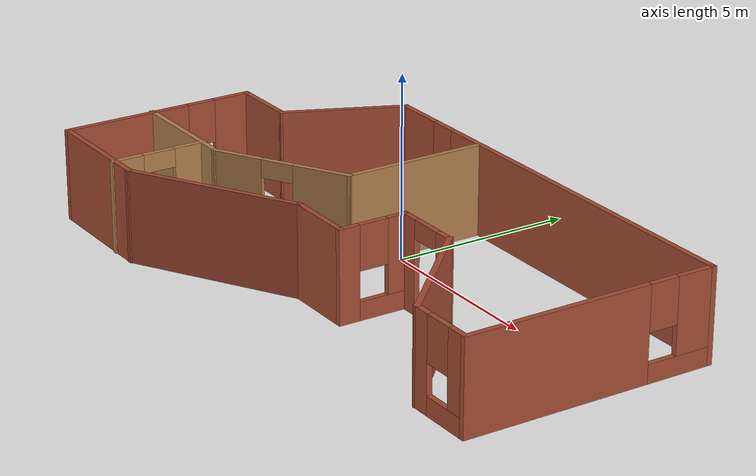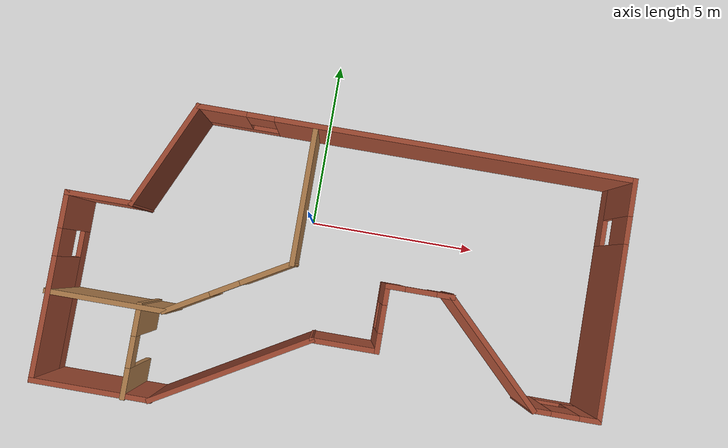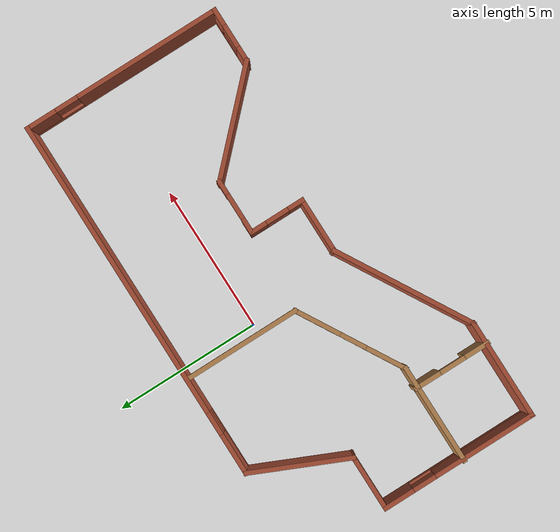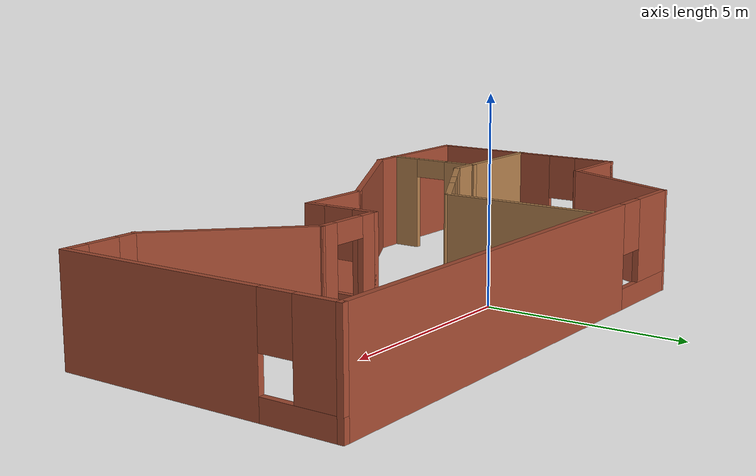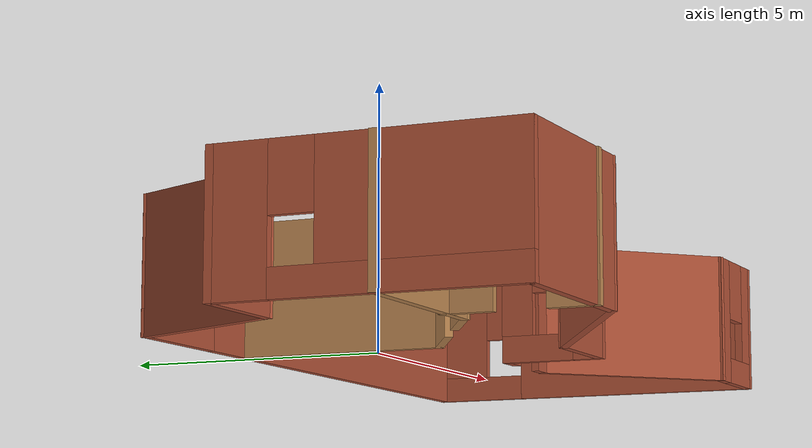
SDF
<?xml version='1.0'?>
<sdf version='1.6'>
  <model name='test_layout'>
    <pose frame=''>0.934964 -1.59471 0 0 -0 0</pose>
    <link name='Wall_0'>
      <pose frame=''>-7.88496 -1.52029 0 0 -0 -1.5708</pose>
      <visual name='Wall_0_Visual_0'>
        <pose frame=''>-2.1977 0 1.25 0 -0 0</pose>
        <geometry>
          <box>
            <size>1.1046 0.15 2.5</size>
          </box>
        </geometry>
        <material>
          <script>
            <uri>file://media/materials/scripts/gazebo.material</uri>
            <name>Gazebo/Bricks</name>
          </script>
          <ambient>1 1 1 1</ambient>
        </material>
        <meta>
          <layer>0</layer>
        </meta>
      </visual>
      <collision name='Wall_0_Collision_0'>
        <geometry>
          <box>
            <size>1.1046 0.15 2.5</size>
          </box>
        </geometry>
        <pose frame=''>-2.1977 0 1.25 0 -0 0</pose>
      </collision>
      <visual name='Wall_0_Visual_1'>
        <pose frame=''>0.552301 0 0.25 0 -0 0</pose>
        <geometry>
          <box>
            <size>4.3954 0.15 0.5</size>
          </box>
        </geometry>
        <material>
          <script>
            <uri>file://media/materials/scripts/gazebo.material</uri>
            <name>Gazebo/Bricks</name>
          </script>
          <ambient>1 1 1 1</ambient>
        </material>
        <meta>
          <layer>0</layer>
        </meta>
      </visual>
      <collision name='Wall_0_Collision_1'>
        <geometry>
          <box>
            <size>4.3954 0.15 0.5</size>
          </box>
        </geometry>
        <pose frame=''>0.552301 0 0.25 0 -0 0</pose>
      </collision>
      <visual name='Wall_0_Visual_2'>
        <pose frame=''>0.952301 0 1.5 0 -0 0</pose>
        <geometry>
          <box>
            <size>3.5954 0.15 2</size>
          </box>
        </geometry>
        <material>
          <script>
            <uri>file://media/materials/scripts/gazebo.material</uri>
            <name>Gazebo/Bricks</name>
          </script>
          <ambient>1 1 1 1</ambient>
        </material>
        <meta>
          <layer>0</layer>
        </meta>
      </visual>
      <collision name='Wall_0_Collision_2'>
        <geometry>
          <box>
            <size>3.5954 0.15 2</size>
          </box>
        </geometry>
        <pose frame=''>0.952301 0 1.5 0 -0 0</pose>
      </collision>
      <visual name='Wall_0_Visual_3'>
        <pose frame=''>-1.2454 0 1.9 0 -0 0</pose>
        <geometry>
          <box>
            <size>0.8 0.15 1.2</size>
          </box>
        </geometry>
        <material>
          <script>
            <uri>file://media/materials/scripts/gazebo.material</uri>
            <name>Gazebo/Bricks</name>
          </script>
          <ambient>1 1 1 1</ambient>
        </material>
        <meta>
          <layer>0</layer>
        </meta>
      </visual>
      <collision name='Wall_0_Collision_3'>
        <geometry>
          <box>
            <size>0.8 0.15 1.2</size>
          </box>
        </geometry>
        <pose frame=''>-1.2454 0 1.9 0 -0 0</pose>
      </collision>
    </link>
    <link name='Wall_1'>
      <collision name='Wall_1_Collision'>
        <geometry>
          <box>
            <size>3.5 0.15 2.5</size>
          </box>
        </geometry>
        <pose frame=''>0 0 1.25 0 -0 0</pose>
      </collision>
      <visual name='Wall_1_Visual'>
        <pose frame=''>0 0 1.25 0 -0 0</pose>
        <geometry>
          <box>
            <size>3.5 0.15 2.5</size>
          </box>
        </geometry>
        <material>
          <script>
            <uri>file://media/materials/scripts/gazebo.material</uri>
            <name>Gazebo/Bricks</name>
          </script>
          <ambient>1 1 1 1</ambient>
        </material>
        <meta>
          <layer>0</layer>
        </meta>
      </visual>
      <pose frame=''>-6.20996 -4.19529 0 0 -0 0</pose>
    </link>
    <link name='Wall_12'>
      <collision name='Wall_12_Collision'>
        <geometry>
          <box>
            <size>2 0.15 2.5</size>
          </box>
        </geometry>
        <pose frame=''>0 0 1.25 0 -0 0</pose>
      </collision>
      <visual name='Wall_12_Visual'>
        <pose frame=''>0 0 1.25 0 -0 0</pose>
        <geometry>
          <box>
            <size>2 0.15 2.5</size>
          </box>
        </geometry>
        <material>
          <script>
            <uri>file://media/materials/scripts/gazebo.material</uri>
            <name>Gazebo/Bricks</name>
          </script>
          <ambient>1 1 1 1</ambient>
        </material>
        <meta>
          <layer>0</layer>
        </meta>
      </visual>
      <pose frame=''>-6.95996 1.15471 0 0 -0 0</pose>
    </link>
    <link name='Wall_13'>
      <collision name='Wall_13_Collision'>
        <geometry>
          <box>
            <size>3.49703 0.15 2.5</size>
          </box>
        </geometry>
        <pose frame=''>0 0 1.25 0 -0 0</pose>
      </collision>
      <visual name='Wall_13_Visual'>
        <pose frame=''>0 0 1.25 0 -0 0</pose>
        <geometry>
          <box>
            <size>3.49703 0.15 2.5</size>
          </box>
        </geometry>
        <material>
          <script>
            <uri>file://media/materials/scripts/gazebo.material</uri>
            <name>Gazebo/Bricks</name>
          </script>
          <ambient>1 1 1 1</ambient>
        </material>
        <meta>
          <layer>0</layer>
        </meta>
      </visual>
      <pose frame=''>-5.34867 2.68103 0 0 -0 1.14824</pose>
    </link>
    <link name='Wall_15'>
      <collision name='Wall_15_Collision'>
        <geometry>
          <box>
            <size>3.5 0.15 2.5</size>
          </box>
        </geometry>
        <pose frame=''>0 0 1.25 0 -0 0</pose>
      </collision>
      <visual name='Wall_15_Visual'>
        <pose frame=''>0 0 1.25 0 -0 0</pose>
        <geometry>
          <box>
            <size>3.5 0.15 2.5</size>
          </box>
        </geometry>
        <material>
          <script>
            <uri>file://media/materials/scripts/gazebo.material</uri>
            <name>Gazebo/Wood</name>
          </script>
          <ambient>1 1 1 1</ambient>
        </material>
        <meta>
          <layer>0</layer>
        </meta>
      </visual>
      <pose frame=''>-6.26262 -1.68471 0 0 -0 0</pose>
    </link>
    <link name='Wall_16'>
      <pose frame=''>-2.92052 -0.722207 0 0 -0 0.523599</pose>
      <visual name='Wall_16_Visual_0'>
        <pose frame=''>-1.27317 0 1.25 0 -0 0</pose>
        <geometry>
          <box>
            <size>1.45367 0.15 2.5</size>
          </box>
        </geometry>
        <material>
          <script>
            <uri>file://media/materials/scripts/gazebo.material</uri>
            <name>Gazebo/Wood</name>
          </script>
          <ambient>1 1 1 1</ambient>
        </material>
        <meta>
          <layer>0</layer>
        </meta>
      </visual>
      <collision name='Wall_16_Collision_0'>
        <geometry>
          <box>
            <size>1.45367 0.15 2.5</size>
          </box>
        </geometry>
        <pose frame=''>-1.27317 0 1.25 0 -0 0</pose>
      </collision>
      <visual name='Wall_16_Visual_1'>
        <pose frame=''>1.17684 0 1.25 0 -0 0</pose>
        <geometry>
          <box>
            <size>1.64633 0.15 2.5</size>
          </box>
        </geometry>
        <material>
          <script>
            <uri>file://media/materials/scripts/gazebo.material</uri>
            <name>Gazebo/Wood</name>
          </script>
          <ambient>1 1 1 1</ambient>
        </material>
        <meta>
          <layer>0</layer>
        </meta>
      </visual>
      <collision name='Wall_16_Collision_1'>
        <geometry>
          <box>
            <size>1.64633 0.15 2.5</size>
          </box>
        </geometry>
        <pose frame=''>1.17684 0 1.25 0 -0 0</pose>
      </collision>
      <visual name='Wall_16_Visual_2'>
        <pose frame=''>-0.09633 0 2.25 0 -0 0</pose>
        <geometry>
          <box>
            <size>0.9 0.15 0.5</size>
          </box>
        </geometry>
        <material>
          <script>
            <uri>file://media/materials/scripts/gazebo.material</uri>
            <name>Gazebo/Wood</name>
          </script>
          <ambient>1 1 1 1</ambient>
        </material>
        <meta>
          <layer>0</layer>
        </meta>
      </visual>
      <collision name='Wall_16_Collision_2'>
        <geometry>
          <box>
            <size>0.9 0.15 0.5</size>
          </box>
        </geometry>
        <pose frame=''>-0.09633 0 2.25 0 -0 0</pose>
      </collision>
    </link>
    <link name='Wall_17'>
      <collision name='Wall_17_Collision'>
        <geometry>
          <box>
            <size>4 0.15 2.5</size>
          </box>
        </geometry>
        <pose frame=''>0 0 1.25 0 -0 0</pose>
      </collision>
      <visual name='Wall_17_Visual'>
        <pose frame=''>0 0 1.25 0 -0 0</pose>
        <geometry>
          <box>
            <size>4 0.15 2.5</size>
          </box>
        </geometry>
        <material>
          <script>
            <uri>file://media/materials/scripts/gazebo.material</uri>
            <name>Gazebo/Wood</name>
          </script>
          <ambient>1 1 1 1</ambient>
        </material>
        <meta>
          <layer>0</layer>
        </meta>
      </visual>
      <pose frame=''>-1.25342 2.16529 0 0 -0 1.5708</pose>
    </link>
    <link name='Wall_2'>
      <collision name='Wall_2_Collision'>
        <geometry>
          <box>
            <size>5 0.15 2.5</size>
          </box>
        </geometry>
        <pose frame=''>0 0 1.25 0 -0 0</pose>
      </collision>
      <visual name='Wall_2_Visual'>
        <pose frame=''>0 0 1.25 0 -0 0</pose>
        <geometry>
          <box>
            <size>5 0.15 2.5</size>
          </box>
        </geometry>
        <material>
          <script>
            <uri>file://media/materials/scripts/gazebo.material</uri>
            <name>Gazebo/Bricks</name>
          </script>
          <ambient>1 1 1 1</ambient>
        </material>
        <meta>
          <layer>0</layer>
        </meta>
      </visual>
      <pose frame=''>-2.43485 -2.98279 0 0 -0 0.523599</pose>
    </link>
    <link name='Wall_20'>
      <pose frame=''>-5.2776 -2.93151 0 0 -0 -1.5708</pose>
      <visual name='Wall_20_Visual_0'>
        <pose frame=''>-0.897495 0 1.25 0 -0 0</pose>
        <geometry>
          <box>
            <size>0.95501 0.15 2.5</size>
          </box>
        </geometry>
        <material>
          <script>
            <uri>file://media/materials/scripts/gazebo.material</uri>
            <name>Gazebo/Wood</name>
          </script>
          <ambient>1 1 1 1</ambient>
        </material>
        <meta>
          <layer>0</layer>
        </meta>
      </visual>
      <collision name='Wall_20_Collision_0'>
        <geometry>
          <box>
            <size>0.95501 0.15 2.5</size>
          </box>
        </geometry>
        <pose frame=''>-0.897495 0 1.25 0 -0 0</pose>
      </collision>
      <visual name='Wall_20_Visual_1'>
        <pose frame=''>0.927505 0 1.25 0 -0 0</pose>
        <geometry>
          <box>
            <size>0.89499 0.15 2.5</size>
          </box>
        </geometry>
        <material>
          <script>
            <uri>file://media/materials/scripts/gazebo.material</uri>
            <name>Gazebo/Wood</name>
          </script>
          <ambient>1 1 1 1</ambient>
        </material>
        <meta>
          <layer>0</layer>
        </meta>
      </visual>
      <collision name='Wall_20_Collision_1'>
        <geometry>
          <box>
            <size>0.89499 0.15 2.5</size>
          </box>
        </geometry>
        <pose frame=''>0.927505 0 1.25 0 -0 0</pose>
      </collision>
      <visual name='Wall_20_Visual_2'>
        <pose frame=''>0.03001 0 2.25 0 -0 0</pose>
        <geometry>
          <box>
            <size>0.9 0.15 0.5</size>
          </box>
        </geometry>
        <material>
          <script>
            <uri>file://media/materials/scripts/gazebo.material</uri>
            <name>Gazebo/Wood</name>
          </script>
          <ambient>1 1 1 1</ambient>
        </material>
        <meta>
          <layer>0</layer>
        </meta>
      </visual>
      <collision name='Wall_20_Collision_2'>
        <geometry>
          <box>
            <size>0.9 0.15 0.5</size>
          </box>
        </geometry>
        <pose frame=''>0.03001 0 2.25 0 -0 0</pose>
      </collision>
    </link>
    <link name='Wall_3'>
      <collision name='Wall_3_Collision'>
        <geometry>
          <box>
            <size>2 0.15 2.5</size>
          </box>
        </geometry>
        <pose frame=''>0 0 1.25 0 -0 0</pose>
      </collision>
      <visual name='Wall_3_Visual'>
        <pose frame=''>0 0 1.25 0 -0 0</pose>
        <geometry>
          <box>
            <size>2 0.15 2.5</size>
          </box>
        </geometry>
        <material>
          <script>
            <uri>file://media/materials/scripts/gazebo.material</uri>
            <name>Gazebo/Bricks</name>
          </script>
          <ambient>1 1 1 1</ambient>
        </material>
        <meta>
          <layer>0</layer>
        </meta>
      </visual>
      <pose frame=''>0.590259 -1.77029 0 0 -0 0</pose>
    </link>
    <link name='Wall_4'>
      <pose frame=''>1.51526 -0.845293 0 0 -0 1.5708</pose>
      <visual name='Wall_4_Visual_0'>
        <pose frame=''>-0.707403 0 1.25 0 -0 0</pose>
        <geometry>
          <box>
            <size>0.585193 0.15 2.5</size>
          </box>
        </geometry>
        <material>
          <script>
            <uri>file://media/materials/scripts/gazebo.material</uri>
            <name>Gazebo/Bricks</name>
          </script>
          <ambient>1 1 1 1</ambient>
        </material>
        <meta>
          <layer>0</layer>
        </meta>
      </visual>
      <collision name='Wall_4_Collision_0'>
        <geometry>
          <box>
            <size>0.585193 0.15 2.5</size>
          </box>
        </geometry>
        <pose frame=''>-0.707403 0 1.25 0 -0 0</pose>
      </collision>
      <visual name='Wall_4_Visual_1'>
        <pose frame=''>0.292597 0 0.25 0 -0 0</pose>
        <geometry>
          <box>
            <size>1.41481 0.15 0.5</size>
          </box>
        </geometry>
        <material>
          <script>
            <uri>file://media/materials/scripts/gazebo.material</uri>
            <name>Gazebo/Bricks</name>
          </script>
          <ambient>1 1 1 1</ambient>
        </material>
        <meta>
          <layer>0</layer>
        </meta>
      </visual>
      <collision name='Wall_4_Collision_1'>
        <geometry>
          <box>
            <size>1.41481 0.15 0.5</size>
          </box>
        </geometry>
        <pose frame=''>0.292597 0 0.25 0 -0 0</pose>
      </collision>
      <visual name='Wall_4_Visual_2'>
        <pose frame=''>0.692597 0 1.5 0 -0 0</pose>
        <geometry>
          <box>
            <size>0.614807 0.15 2</size>
          </box>
        </geometry>
        <material>
          <script>
            <uri>file://media/materials/scripts/gazebo.material</uri>
            <name>Gazebo/Bricks</name>
          </script>
          <ambient>1 1 1 1</ambient>
        </material>
        <meta>
          <layer>0</layer>
        </meta>
      </visual>
      <collision name='Wall_4_Collision_2'>
        <geometry>
          <box>
            <size>0.614807 0.15 2</size>
          </box>
        </geometry>
        <pose frame=''>0.692597 0 1.5 0 -0 0</pose>
      </collision>
      <visual name='Wall_4_Visual_3'>
        <pose frame=''>-0.014807 0 1.9 0 -0 0</pose>
        <geometry>
          <box>
            <size>0.8 0.15 1.2</size>
          </box>
        </geometry>
        <material>
          <script>
            <uri>file://media/materials/scripts/gazebo.material</uri>
            <name>Gazebo/Bricks</name>
          </script>
          <ambient>1 1 1 1</ambient>
        </material>
        <meta>
          <layer>0</layer>
        </meta>
      </visual>
      <collision name='Wall_4_Collision_3'>
        <geometry>
          <box>
            <size>0.8 0.15 1.2</size>
          </box>
        </geometry>
        <pose frame=''>-0.014807 0 1.9 0 -0 0</pose>
      </collision>
    </link>
    <link name='Wall_5'>
      <pose frame=''>2.44026 0.079707 0 0 -0 0</pose>
      <visual name='Wall_5_Visual_0'>
        <pose frame=''>-0.713601 0 1.25 0 -0 0</pose>
        <geometry>
          <box>
            <size>0.572797 0.15 2.5</size>
          </box>
        </geometry>
        <material>
          <script>
            <uri>file://media/materials/scripts/gazebo.material</uri>
            <name>Gazebo/Bricks</name>
          </script>
          <ambient>1 1 1 1</ambient>
        </material>
        <meta>
          <layer>0</layer>
        </meta>
      </visual>
      <collision name='Wall_5_Collision_0'>
        <geometry>
          <box>
            <size>0.572797 0.15 2.5</size>
          </box>
        </geometry>
        <pose frame=''>-0.713601 0 1.25 0 -0 0</pose>
      </collision>
      <visual name='Wall_5_Visual_1'>
        <pose frame=''>0.736399 0 1.25 0 -0 0</pose>
        <geometry>
          <box>
            <size>0.527203 0.15 2.5</size>
          </box>
        </geometry>
        <material>
          <script>
            <uri>file://media/materials/scripts/gazebo.material</uri>
            <name>Gazebo/Bricks</name>
          </script>
          <ambient>1 1 1 1</ambient>
        </material>
        <meta>
          <layer>0</layer>
        </meta>
      </visual>
      <collision name='Wall_5_Collision_1'>
        <geometry>
          <box>
            <size>0.527203 0.15 2.5</size>
          </box>
        </geometry>
        <pose frame=''>0.736399 0 1.25 0 -0 0</pose>
      </collision>
      <visual name='Wall_5_Visual_2'>
        <pose frame=''>0.022797 0 2.25 0 -0 0</pose>
        <geometry>
          <box>
            <size>0.9 0.15 0.5</size>
          </box>
        </geometry>
        <material>
          <script>
            <uri>file://media/materials/scripts/gazebo.material</uri>
            <name>Gazebo/Bricks</name>
          </script>
          <ambient>1 1 1 1</ambient>
        </material>
        <meta>
          <layer>0</layer>
        </meta>
      </visual>
      <collision name='Wall_5_Collision_2'>
        <geometry>
          <box>
            <size>0.9 0.15 0.5</size>
          </box>
        </geometry>
        <pose frame=''>0.022797 0 2.25 0 -0 0</pose>
      </collision>
    </link>
    <link name='Wall_6'>
      <collision name='Wall_6_Collision'>
        <geometry>
          <box>
            <size>4 0.15 2.5</size>
          </box>
        </geometry>
        <pose frame=''>0 0 1.25 0 -0 0</pose>
      </collision>
      <visual name='Wall_6_Visual'>
        <pose frame=''>0 0 1.25 0 -0 0</pose>
        <geometry>
          <box>
            <size>4 0.15 2.5</size>
          </box>
        </geometry>
        <material>
          <script>
            <uri>file://media/materials/scripts/gazebo.material</uri>
            <name>Gazebo/Bricks</name>
          </script>
          <ambient>1 1 1 1</ambient>
        </material>
        <meta>
          <layer>0</layer>
        </meta>
      </visual>
      <pose frame=''>4.72644 -1.28147 0 0 -0 -0.785398</pose>
    </link>
    <link name='Wall_7'>
      <pose frame=''>7.01262 -2.64265 0 0 -0 0</pose>
      <visual name='Wall_7_Visual_0'>
        <pose frame=''>-0.713765 0 1.25 0 -0 0</pose>
        <geometry>
          <box>
            <size>0.57247 0.15 2.5</size>
          </box>
        </geometry>
        <material>
          <script>
            <uri>file://media/materials/scripts/gazebo.material</uri>
            <name>Gazebo/Bricks</name>
          </script>
          <ambient>1 1 1 1</ambient>
        </material>
        <meta>
          <layer>0</layer>
        </meta>
      </visual>
      <collision name='Wall_7_Collision_0'>
        <geometry>
          <box>
            <size>0.57247 0.15 2.5</size>
          </box>
        </geometry>
        <pose frame=''>-0.713765 0 1.25 0 -0 0</pose>
      </collision>
      <visual name='Wall_7_Visual_1'>
        <pose frame=''>0.286235 0 0.25 0 -0 0</pose>
        <geometry>
          <box>
            <size>1.42753 0.15 0.5</size>
          </box>
        </geometry>
        <material>
          <script>
            <uri>file://media/materials/scripts/gazebo.material</uri>
            <name>Gazebo/Bricks</name>
          </script>
          <ambient>1 1 1 1</ambient>
        </material>
        <meta>
          <layer>0</layer>
        </meta>
      </visual>
      <collision name='Wall_7_Collision_1'>
        <geometry>
          <box>
            <size>1.42753 0.15 0.5</size>
          </box>
        </geometry>
        <pose frame=''>0.286235 0 0.25 0 -0 0</pose>
      </collision>
      <visual name='Wall_7_Visual_2'>
        <pose frame=''>0.686235 0 1.5 0 -0 0</pose>
        <geometry>
          <box>
            <size>0.62753 0.15 2</size>
          </box>
        </geometry>
        <material>
          <script>
            <uri>file://media/materials/scripts/gazebo.material</uri>
            <name>Gazebo/Bricks</name>
          </script>
          <ambient>1 1 1 1</ambient>
        </material>
        <meta>
          <layer>0</layer>
        </meta>
      </visual>
      <collision name='Wall_7_Collision_2'>
        <geometry>
          <box>
            <size>0.62753 0.15 2</size>
          </box>
        </geometry>
        <pose frame=''>0.686235 0 1.5 0 -0 0</pose>
      </collision>
      <visual name='Wall_7_Visual_3'>
        <pose frame=''>-0.02753 0 1.9 0 -0 0</pose>
        <geometry>
          <box>
            <size>0.8 0.15 1.2</size>
          </box>
        </geometry>
        <material>
          <script>
            <uri>file://media/materials/scripts/gazebo.material</uri>
            <name>Gazebo/Bricks</name>
          </script>
          <ambient>1 1 1 1</ambient>
        </material>
        <meta>
          <layer>0</layer>
        </meta>
      </visual>
      <collision name='Wall_7_Collision_3'>
        <geometry>
          <box>
            <size>0.8 0.15 1.2</size>
          </box>
        </geometry>
        <pose frame=''>-0.02753 0 1.9 0 -0 0</pose>
      </collision>
    </link>
    <link name='Wall_8'>
      <pose frame=''>7.93762 0.782346 0 0 -0 1.5708</pose>
      <visual name='Wall_8_Visual_0'>
        <pose frame=''>-0.949109 0 1.25 0 -0 0</pose>
        <geometry>
          <box>
            <size>5.10178 0.15 2.5</size>
          </box>
        </geometry>
        <material>
          <script>
            <uri>file://media/materials/scripts/gazebo.material</uri>
            <name>Gazebo/Bricks</name>
          </script>
          <ambient>1 1 1 1</ambient>
        </material>
        <meta>
          <layer>0</layer>
        </meta>
      </visual>
      <collision name='Wall_8_Collision_0'>
        <geometry>
          <box>
            <size>5.10178 0.15 2.5</size>
          </box>
        </geometry>
        <pose frame=''>-0.949109 0 1.25 0 -0 0</pose>
      </collision>
      <visual name='Wall_8_Visual_1'>
        <pose frame=''>2.55089 0 0.25 0 -0 0</pose>
        <geometry>
          <box>
            <size>1.89822 0.15 0.5</size>
          </box>
        </geometry>
        <material>
          <script>
            <uri>file://media/materials/scripts/gazebo.material</uri>
            <name>Gazebo/Bricks</name>
          </script>
          <ambient>1 1 1 1</ambient>
        </material>
        <meta>
          <layer>0</layer>
        </meta>
      </visual>
      <collision name='Wall_8_Collision_1'>
        <geometry>
          <box>
            <size>1.89822 0.15 0.5</size>
          </box>
        </geometry>
        <pose frame=''>2.55089 0 0.25 0 -0 0</pose>
      </collision>
      <visual name='Wall_8_Visual_2'>
        <pose frame=''>2.95089 0 1.5 0 -0 0</pose>
        <geometry>
          <box>
            <size>1.09822 0.15 2</size>
          </box>
        </geometry>
        <material>
          <script>
            <uri>file://media/materials/scripts/gazebo.material</uri>
            <name>Gazebo/Bricks</name>
          </script>
          <ambient>1 1 1 1</ambient>
        </material>
        <meta>
          <layer>0</layer>
        </meta>
      </visual>
      <collision name='Wall_8_Collision_2'>
        <geometry>
          <box>
            <size>1.09822 0.15 2</size>
          </box>
        </geometry>
        <pose frame=''>2.95089 0 1.5 0 -0 0</pose>
      </collision>
      <visual name='Wall_8_Visual_3'>
        <pose frame=''>2.00178 0 1.9 0 -0 0</pose>
        <geometry>
          <box>
            <size>0.8 0.15 1.2</size>
          </box>
        </geometry>
        <material>
          <script>
            <uri>file://media/materials/scripts/gazebo.material</uri>
            <name>Gazebo/Bricks</name>
          </script>
          <ambient>1 1 1 1</ambient>
        </material>
        <meta>
          <layer>0</layer>
        </meta>
      </visual>
      <collision name='Wall_8_Collision_3'>
        <geometry>
          <box>
            <size>0.8 0.15 1.2</size>
          </box>
        </geometry>
        <pose frame=''>2.00178 0 1.9 0 -0 0</pose>
      </collision>
    </link>
    <link name='Wall_9'>
      <pose frame=''>1.63762 4.20735 0 0 -0 3.14159</pose>
      <visual name='Wall_9_Visual_0'>
        <pose frame=''>-1.1402 0 1.25 0 -0 0</pose>
        <geometry>
          <box>
            <size>10.4696 0.15 2.5</size>
          </box>
        </geometry>
        <material>
          <script>
            <uri>file://media/materials/scripts/gazebo.material</uri>
            <name>Gazebo/Bricks</name>
          </script>
          <ambient>1 1 1 1</ambient>
        </material>
        <meta>
          <layer>0</layer>
        </meta>
      </visual>
      <collision name='Wall_9_Collision_0'>
        <geometry>
          <box>
            <size>10.4696 0.15 2.5</size>
          </box>
        </geometry>
        <pose frame=''>-1.1402 0 1.25 0 -0 0</pose>
      </collision>
      <visual name='Wall_9_Visual_1'>
        <pose frame=''>5.2348 0 0.25 0 -0 0</pose>
        <geometry>
          <box>
            <size>2.2804 0.15 0.5</size>
          </box>
        </geometry>
        <material>
          <script>
            <uri>file://media/materials/scripts/gazebo.material</uri>
            <name>Gazebo/Bricks</name>
          </script>
          <ambient>1 1 1 1</ambient>
        </material>
        <meta>
          <layer>0</layer>
        </meta>
      </visual>
      <collision name='Wall_9_Collision_1'>
        <geometry>
          <box>
            <size>2.2804 0.15 0.5</size>
          </box>
        </geometry>
        <pose frame=''>5.2348 0 0.25 0 -0 0</pose>
      </collision>
      <visual name='Wall_9_Visual_2'>
        <pose frame=''>5.6348 0 1.5 0 -0 0</pose>
        <geometry>
          <box>
            <size>1.4804 0.15 2</size>
          </box>
        </geometry>
        <material>
          <script>
            <uri>file://media/materials/scripts/gazebo.material</uri>
            <name>Gazebo/Bricks</name>
          </script>
          <ambient>1 1 1 1</ambient>
        </material>
        <meta>
          <layer>0</layer>
        </meta>
      </visual>
      <collision name='Wall_9_Collision_2'>
        <geometry>
          <box>
            <size>1.4804 0.15 2</size>
          </box>
        </geometry>
        <pose frame=''>5.6348 0 1.5 0 -0 0</pose>
      </collision>
      <visual name='Wall_9_Visual_3'>
        <pose frame=''>4.4946 0 1.9 0 -0 0</pose>
        <geometry>
          <box>
            <size>0.8 0.15 1.2</size>
          </box>
        </geometry>
        <material>
          <script>
            <uri>file://media/materials/scripts/gazebo.material</uri>
            <name>Gazebo/Bricks</name>
          </script>
          <ambient>1 1 1 1</ambient>
        </material>
        <meta>
          <layer>0</layer>
        </meta>
      </visual>
      <collision name='Wall_9_Collision_3'>
        <geometry>
          <box>
            <size>0.8 0.15 1.2</size>
          </box>
        </geometry>
        <pose frame=''>4.4946 0 1.9 0 -0 0</pose>
      </collision>
    </link>
    <static>1</static>
  </model>
</sdf>
